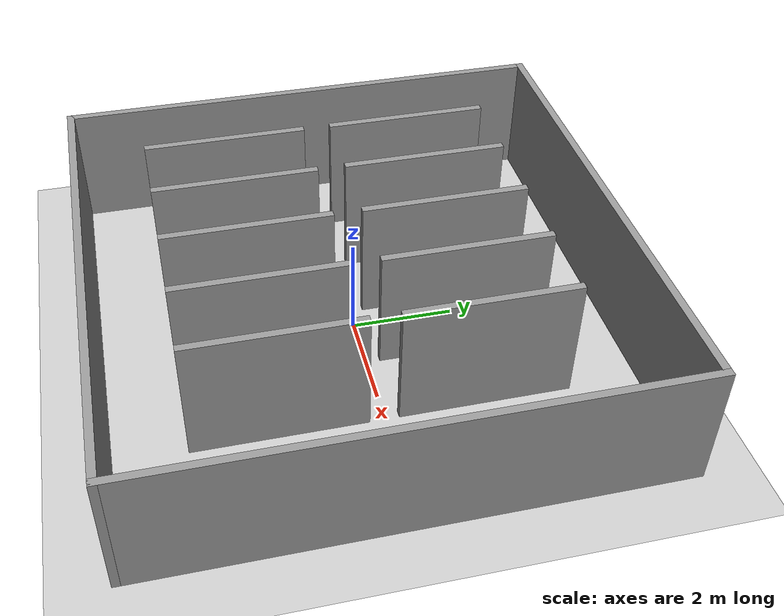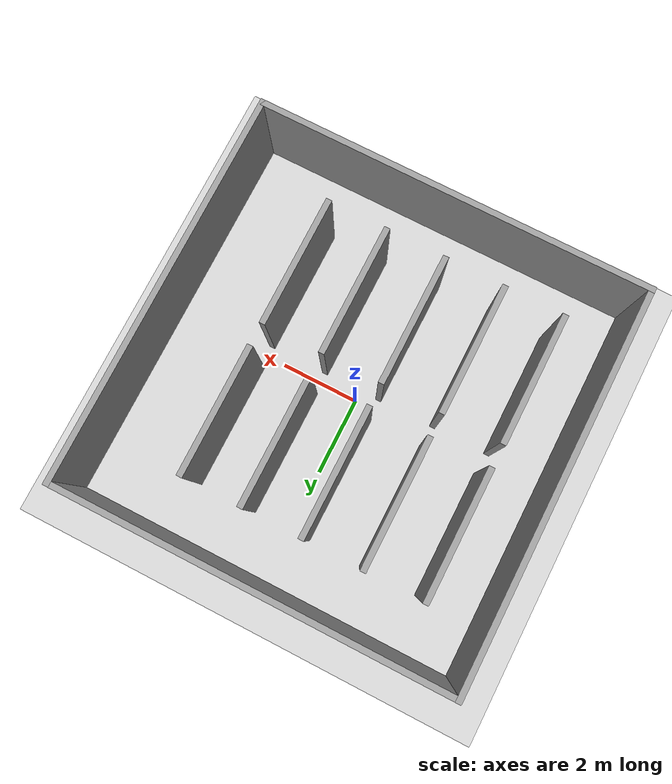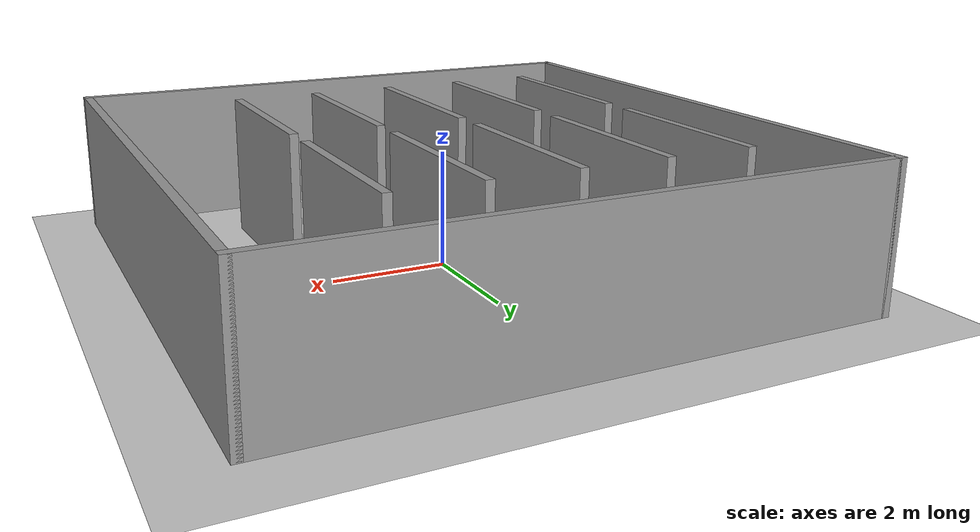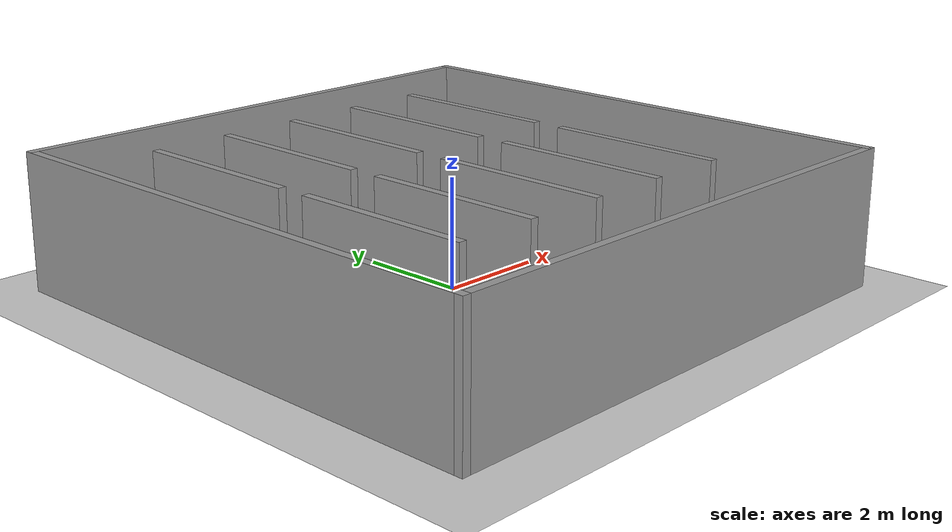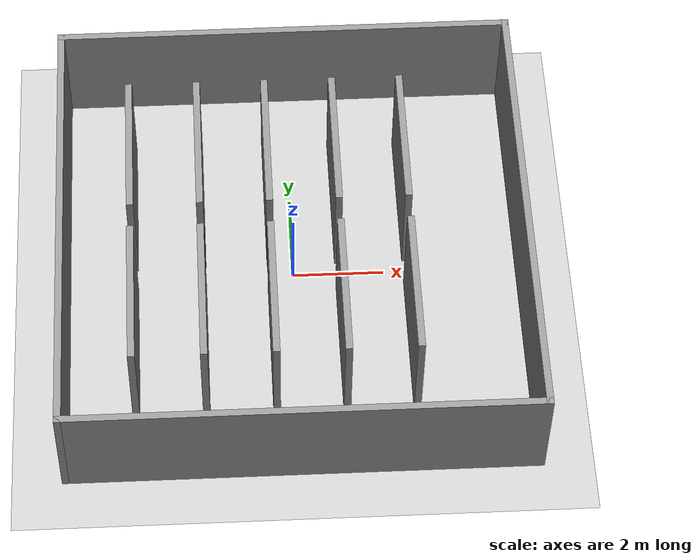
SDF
<sdf version="1.6">
 <world name="default">
  <light name="sun" type="directional">
   <pose>0 0 10 0 -0 0</pose>
   <diffuse>0.8 0.8 0.8 1</diffuse>
   <specular>0.2 0.2 0.2 1</specular>
   <attenuation>
    <range>1000</range>
    <constant>0.9</constant>
    <linear>0.01</linear>
    <quadratic>0.001</quadratic>
   </attenuation>
   <direction>-0.5 0.1 -0.9</direction>
  </light>
  <model name="ground_plane">
   <static>1</static>
   <link name="link">
    <collision name="collision">
     <geometry><plane><normal>0 0 1</normal><size>100 100</size></plane></geometry>
     <surface><friction><ode><mu>100</mu><mu2>50</mu2></ode></friction></surface>
    </collision>
    <visual name="visual">
     <cast_shadows>0</cast_shadows>
     <geometry><plane><normal>0 0 1</normal><size>100 100</size></plane></geometry>
     <material>
      <script><uri>file://media/materials/scripts/gazebo.material</uri><name>Gazebo/Grey</name></script>
     </material>
    </visual>
   </link>
  </model>
  <gravity>0 0 -9.8</gravity>
  <magnetic_field>6e-06 2.3e-05 -4.2e-05</magnetic_field>
  <atmosphere type="adiabatic"/>
  <physics name="default_physics" default="0" type="ode">
   <max_step_size>0.001</max_step_size>
   <real_time_factor>1</real_time_factor>
   <real_time_update_rate>1000</real_time_update_rate>
  </physics>
  <scene><ambient>0.4 0.4 0.4 1</ambient><background>0.7 0.7 0.7 1</background><shadows>1</shadows></scene>
  <spherical_coordinates>
   <surface_model>EARTH_WGS84</surface_model>
   <latitude_deg>0</latitude_deg>
   <longitude_deg>0</longitude_deg>
   <elevation>0</elevation>
   <heading_deg>0</heading_deg>
  </spherical_coordinates>
  <model name="warehouse">
   <link name="Wall_12">
    <pose>-3.5 1.925 0 0 0 -1.5708</pose>
    <visual name="Wall_12_Visual">
     <pose>0 0 1.25 0 -0 0</pose>
     <geometry><box><size>3.3 0.15 2.5</size></box></geometry>
     <material>
      <script><uri>file://media/materials/scripts/gazebo.material</uri><name>Gazebo/Grey</name></script>
      <ambient>1 1 1 1</ambient>
      <shader type="pixel"/>
      <diffuse>0.7 0.7 0.7 1</diffuse>
      <specular>0.01 0.01 0.01 1</specular>
      <emissive>0 0 0 1</emissive>
     </material>
     <meta><layer>0</layer></meta>
    </visual>
    <collision name="Wall_12_Collision">
     <pose>0 0 1.25 0 -0 0</pose>
     <geometry><box><size>3.3 0.15 2.5</size></box></geometry>
     <surface>
      <friction>
       <ode><mu>1</mu><mu2>1</mu2><fdir1>0 0 0</fdir1><slip1>0</slip1><slip2>0</slip2></ode>
       <torsional>
        <coefficient>1</coefficient>
        <patch_radius>0</patch_radius>
        <surface_radius>0</surface_radius>
        <use_patch_radius>1</use_patch_radius>
        <ode><slip>0</slip></ode>
       </torsional>
      </friction>
      <bounce><restitution_coefficient>0</restitution_coefficient><threshold>1e+06</threshold></bounce>
      <contact>
       <collide_without_contact>0</collide_without_contact>
       <collide_without_contact_bitmask>1</collide_without_contact_bitmask>
       <collide_bitmask>1</collide_bitmask>
       <ode>
        <soft_cfm>0</soft_cfm>
        <soft_erp>0.2</soft_erp>
        <kp>1e+13</kp>
        <kd>1</kd>
        <max_vel>0.01</max_vel>
        <min_depth>0</min_depth>
       </ode>
       <bullet>
        <split_impulse>1</split_impulse>
        <split_impulse_penetration_threshold>-0.01</split_impulse_penetration_threshold>
        <soft_cfm>0</soft_cfm>
        <soft_erp>0.2</soft_erp>
        <kp>1e+13</kp>
        <kd>1</kd>
       </bullet>
      </contact>
     </surface>
    </collision>
   </link>
   <link name="Wall_14">
    <pose>-3.5 -1.925 0 0 -0 1.5708</pose>
    <visual name="Wall_14_Visual">
     <pose>0 0 1.25 0 -0 0</pose>
     <geometry><box><size>3.3 0.15 2.5</size></box></geometry>
     <material>
      <script><uri>file://media/materials/scripts/gazebo.material</uri><name>Gazebo/Grey</name></script>
      <ambient>1 1 1 1</ambient>
      <shader type="pixel"/>
      <diffuse>0.7 0.7 0.7 1</diffuse>
      <specular>0.01 0.01 0.01 1</specular>
      <emissive>0 0 0 1</emissive>
     </material>
     <meta><layer>0</layer></meta>
    </visual>
    <collision name="Wall_14_Collision">
     <pose>0 0 1.25 0 -0 0</pose>
     <geometry><box><size>3.3 0.15 2.5</size></box></geometry>
     <surface>
      <friction>
       <ode><mu>1</mu><mu2>1</mu2><fdir1>0 0 0</fdir1><slip1>0</slip1><slip2>0</slip2></ode>
       <torsional>
        <coefficient>1</coefficient>
        <patch_radius>0</patch_radius>
        <surface_radius>0</surface_radius>
        <use_patch_radius>1</use_patch_radius>
        <ode><slip>0</slip></ode>
       </torsional>
      </friction>
      <bounce><restitution_coefficient>0</restitution_coefficient><threshold>1e+06</threshold></bounce>
      <contact>
       <collide_without_contact>0</collide_without_contact>
       <collide_without_contact_bitmask>1</collide_without_contact_bitmask>
       <collide_bitmask>1</collide_bitmask>
       <ode>
        <soft_cfm>0</soft_cfm>
        <soft_erp>0.2</soft_erp>
        <kp>1e+13</kp>
        <kd>1</kd>
        <max_vel>0.01</max_vel>
        <min_depth>0</min_depth>
       </ode>
       <bullet>
        <split_impulse>1</split_impulse>
        <split_impulse_penetration_threshold>-0.01</split_impulse_penetration_threshold>
        <soft_cfm>0</soft_cfm>
        <soft_erp>0.2</soft_erp>
        <kp>1e+13</kp>
        <kd>1</kd>
       </bullet>
      </contact>
     </surface>
    </collision>
   </link>
   <link name="Wall_16">
    <pose>-2 1.925 0 0 0 -1.5708</pose>
    <visual name="Wall_16_Visual">
     <pose>0 0 1.25 0 -0 0</pose>
     <geometry><box><size>3.3 0.15 2.5</size></box></geometry>
     <material>
      <script><uri>file://media/materials/scripts/gazebo.material</uri><name>Gazebo/Grey</name></script>
      <ambient>1 1 1 1</ambient>
      <shader type="pixel"/>
      <diffuse>0.7 0.7 0.7 1</diffuse>
      <specular>0.01 0.01 0.01 1</specular>
      <emissive>0 0 0 1</emissive>
     </material>
     <meta><layer>0</layer></meta>
    </visual>
    <collision name="Wall_16_Collision">
     <pose>0 0 1.25 0 -0 0</pose>
     <geometry><box><size>3.3 0.15 2.5</size></box></geometry>
     <surface>
      <friction>
       <ode><mu>1</mu><mu2>1</mu2><fdir1>0 0 0</fdir1><slip1>0</slip1><slip2>0</slip2></ode>
       <torsional>
        <coefficient>1</coefficient>
        <patch_radius>0</patch_radius>
        <surface_radius>0</surface_radius>
        <use_patch_radius>1</use_patch_radius>
        <ode><slip>0</slip></ode>
       </torsional>
      </friction>
      <bounce><restitution_coefficient>0</restitution_coefficient><threshold>1e+06</threshold></bounce>
      <contact>
       <collide_without_contact>0</collide_without_contact>
       <collide_without_contact_bitmask>1</collide_without_contact_bitmask>
       <collide_bitmask>1</collide_bitmask>
       <ode>
        <soft_cfm>0</soft_cfm>
        <soft_erp>0.2</soft_erp>
        <kp>1e+13</kp>
        <kd>1</kd>
        <max_vel>0.01</max_vel>
        <min_depth>0</min_depth>
       </ode>
       <bullet>
        <split_impulse>1</split_impulse>
        <split_impulse_penetration_threshold>-0.01</split_impulse_penetration_threshold>
        <soft_cfm>0</soft_cfm>
        <soft_erp>0.2</soft_erp>
        <kp>1e+13</kp>
        <kd>1</kd>
       </bullet>
      </contact>
     </surface>
    </collision>
   </link>
   <link name="Wall_18">
    <pose>-2 -1.925 0 0 0 -1.5708</pose>
    <visual name="Wall_18_Visual">
     <pose>0 0 1.25 0 -0 0</pose>
     <geometry><box><size>3.3 0.15 2.5</size></box></geometry>
     <material>
      <script><uri>file://media/materials/scripts/gazebo.material</uri><name>Gazebo/Grey</name></script>
      <ambient>1 1 1 1</ambient>
      <shader type="pixel"/>
      <diffuse>0.7 0.7 0.7 1</diffuse>
      <specular>0.01 0.01 0.01 1</specular>
      <emissive>0 0 0 1</emissive>
     </material>
     <meta><layer>0</layer></meta>
    </visual>
    <collision name="Wall_18_Collision">
     <pose>0 0 1.25 0 -0 0</pose>
     <geometry><box><size>3.3 0.15 2.5</size></box></geometry>
     <surface>
      <friction>
       <ode><mu>1</mu><mu2>1</mu2><fdir1>0 0 0</fdir1><slip1>0</slip1><slip2>0</slip2></ode>
       <torsional>
        <coefficient>1</coefficient>
        <patch_radius>0</patch_radius>
        <surface_radius>0</surface_radius>
        <use_patch_radius>1</use_patch_radius>
        <ode><slip>0</slip></ode>
       </torsional>
      </friction>
      <bounce><restitution_coefficient>0</restitution_coefficient><threshold>1e+06</threshold></bounce>
      <contact>
       <collide_without_contact>0</collide_without_contact>
       <collide_without_contact_bitmask>1</collide_without_contact_bitmask>
       <collide_bitmask>1</collide_bitmask>
       <ode>
        <soft_cfm>0</soft_cfm>
        <soft_erp>0.2</soft_erp>
        <kp>1e+13</kp>
        <kd>1</kd>
        <max_vel>0.01</max_vel>
        <min_depth>0</min_depth>
       </ode>
       <bullet>
        <split_impulse>1</split_impulse>
        <split_impulse_penetration_threshold>-0.01</split_impulse_penetration_threshold>
        <soft_cfm>0</soft_cfm>
        <soft_erp>0.2</soft_erp>
        <kp>1e+13</kp>
        <kd>1</kd>
       </bullet>
      </contact>
     </surface>
    </collision>
   </link>
   <link name="Wall_20">
    <pose>-0.5 1.925 0 0 0 -1.5708</pose>
    <visual name="Wall_20_Visual">
     <pose>0 0 1.25 0 -0 0</pose>
     <geometry><box><size>3.3 0.15 2.5</size></box></geometry>
     <material>
      <script><uri>file://media/materials/scripts/gazebo.material</uri><name>Gazebo/Grey</name></script>
      <ambient>1 1 1 1</ambient>
      <shader type="pixel"/>
      <diffuse>0.7 0.7 0.7 1</diffuse>
      <specular>0.01 0.01 0.01 1</specular>
      <emissive>0 0 0 1</emissive>
     </material>
     <meta><layer>0</layer></meta>
    </visual>
    <collision name="Wall_20_Collision">
     <pose>0 0 1.25 0 -0 0</pose>
     <geometry><box><size>3.3 0.15 2.5</size></box></geometry>
     <surface>
      <friction>
       <ode><mu>1</mu><mu2>1</mu2><fdir1>0 0 0</fdir1><slip1>0</slip1><slip2>0</slip2></ode>
       <torsional>
        <coefficient>1</coefficient>
        <patch_radius>0</patch_radius>
        <surface_radius>0</surface_radius>
        <use_patch_radius>1</use_patch_radius>
        <ode><slip>0</slip></ode>
       </torsional>
      </friction>
      <bounce><restitution_coefficient>0</restitution_coefficient><threshold>1e+06</threshold></bounce>
      <contact>
       <collide_without_contact>0</collide_without_contact>
       <collide_without_contact_bitmask>1</collide_without_contact_bitmask>
       <collide_bitmask>1</collide_bitmask>
       <ode>
        <soft_cfm>0</soft_cfm>
        <soft_erp>0.2</soft_erp>
        <kp>1e+13</kp>
        <kd>1</kd>
        <max_vel>0.01</max_vel>
        <min_depth>0</min_depth>
       </ode>
       <bullet>
        <split_impulse>1</split_impulse>
        <split_impulse_penetration_threshold>-0.01</split_impulse_penetration_threshold>
        <soft_cfm>0</soft_cfm>
        <soft_erp>0.2</soft_erp>
        <kp>1e+13</kp>
        <kd>1</kd>
       </bullet>
      </contact>
     </surface>
    </collision>
   </link>
   <link name="Wall_22">
    <pose>1 1.925 0 0 0 -1.5708</pose>
    <visual name="Wall_22_Visual">
     <pose>0 0 1.25 0 -0 0</pose>
     <geometry><box><size>3.3 0.15 2.5</size></box></geometry>
     <material>
      <script><uri>file://media/materials/scripts/gazebo.material</uri><name>Gazebo/Grey</name></script>
      <ambient>1 1 1 1</ambient>
      <shader type="pixel"/>
      <diffuse>0.7 0.7 0.7 1</diffuse>
      <specular>0.01 0.01 0.01 1</specular>
      <emissive>0 0 0 1</emissive>
     </material>
     <meta><layer>0</layer></meta>
    </visual>
    <collision name="Wall_22_Collision">
     <pose>0 0 1.25 0 -0 0</pose>
     <geometry><box><size>3.3 0.15 2.5</size></box></geometry>
     <surface>
      <friction>
       <ode><mu>1</mu><mu2>1</mu2><fdir1>0 0 0</fdir1><slip1>0</slip1><slip2>0</slip2></ode>
       <torsional>
        <coefficient>1</coefficient>
        <patch_radius>0</patch_radius>
        <surface_radius>0</surface_radius>
        <use_patch_radius>1</use_patch_radius>
        <ode><slip>0</slip></ode>
       </torsional>
      </friction>
      <bounce><restitution_coefficient>0</restitution_coefficient><threshold>1e+06</threshold></bounce>
      <contact>
       <collide_without_contact>0</collide_without_contact>
       <collide_without_contact_bitmask>1</collide_without_contact_bitmask>
       <collide_bitmask>1</collide_bitmask>
       <ode>
        <soft_cfm>0</soft_cfm>
        <soft_erp>0.2</soft_erp>
        <kp>1e+13</kp>
        <kd>1</kd>
        <max_vel>0.01</max_vel>
        <min_depth>0</min_depth>
       </ode>
       <bullet>
        <split_impulse>1</split_impulse>
        <split_impulse_penetration_threshold>-0.01</split_impulse_penetration_threshold>
        <soft_cfm>0</soft_cfm>
        <soft_erp>0.2</soft_erp>
        <kp>1e+13</kp>
        <kd>1</kd>
       </bullet>
      </contact>
     </surface>
    </collision>
   </link>
   <link name="Wall_24">
    <pose>2.5 1.925 0 0 0 -1.5708</pose>
    <visual name="Wall_24_Visual">
     <pose>0 0 1.25 0 -0 0</pose>
     <geometry><box><size>3.3 0.15 2.5</size></box></geometry>
     <material>
      <script><uri>file://media/materials/scripts/gazebo.material</uri><name>Gazebo/Grey</name></script>
      <ambient>1 1 1 1</ambient>
      <shader type="pixel"/>
      <diffuse>0.7 0.7 0.7 1</diffuse>
      <specular>0.01 0.01 0.01 1</specular>
      <emissive>0 0 0 1</emissive>
     </material>
     <meta><layer>0</layer></meta>
    </visual>
    <collision name="Wall_24_Collision">
     <pose>0 0 1.25 0 -0 0</pose>
     <geometry><box><size>3.3 0.15 2.5</size></box></geometry>
     <surface>
      <friction>
       <ode><mu>1</mu><mu2>1</mu2><fdir1>0 0 0</fdir1><slip1>0</slip1><slip2>0</slip2></ode>
       <torsional>
        <coefficient>1</coefficient>
        <patch_radius>0</patch_radius>
        <surface_radius>0</surface_radius>
        <use_patch_radius>1</use_patch_radius>
        <ode><slip>0</slip></ode>
       </torsional>
      </friction>
      <bounce><restitution_coefficient>0</restitution_coefficient><threshold>1e+06</threshold></bounce>
      <contact>
       <collide_without_contact>0</collide_without_contact>
       <collide_without_contact_bitmask>1</collide_without_contact_bitmask>
       <collide_bitmask>1</collide_bitmask>
       <ode>
        <soft_cfm>0</soft_cfm>
        <soft_erp>0.2</soft_erp>
        <kp>1e+13</kp>
        <kd>1</kd>
        <max_vel>0.01</max_vel>
        <min_depth>0</min_depth>
       </ode>
       <bullet>
        <split_impulse>1</split_impulse>
        <split_impulse_penetration_threshold>-0.01</split_impulse_penetration_threshold>
        <soft_cfm>0</soft_cfm>
        <soft_erp>0.2</soft_erp>
        <kp>1e+13</kp>
        <kd>1</kd>
       </bullet>
      </contact>
     </surface>
    </collision>
   </link>
   <link name="Wall_30">
    <pose>-0.5 -1.925 0 0 0 -1.5708</pose>
    <visual name="Wall_30_Visual">
     <pose>0 0 1.25 0 -0 0</pose>
     <geometry><box><size>3.3 0.15 2.5</size></box></geometry>
     <material>
      <script><uri>file://media/materials/scripts/gazebo.material</uri><name>Gazebo/Grey</name></script>
      <ambient>1 1 1 1</ambient>
      <shader type="pixel"/>
      <diffuse>0.7 0.7 0.7 1</diffuse>
      <specular>0.01 0.01 0.01 1</specular>
      <emissive>0 0 0 1</emissive>
     </material>
     <meta><layer>0</layer></meta>
    </visual>
    <collision name="Wall_30_Collision">
     <pose>0 0 1.25 0 -0 0</pose>
     <geometry><box><size>3.3 0.15 2.5</size></box></geometry>
     <surface>
      <friction>
       <ode><mu>1</mu><mu2>1</mu2><fdir1>0 0 0</fdir1><slip1>0</slip1><slip2>0</slip2></ode>
       <torsional>
        <coefficient>1</coefficient>
        <patch_radius>0</patch_radius>
        <surface_radius>0</surface_radius>
        <use_patch_radius>1</use_patch_radius>
        <ode><slip>0</slip></ode>
       </torsional>
      </friction>
      <bounce><restitution_coefficient>0</restitution_coefficient><threshold>1e+06</threshold></bounce>
      <contact>
       <collide_without_contact>0</collide_without_contact>
       <collide_without_contact_bitmask>1</collide_without_contact_bitmask>
       <collide_bitmask>1</collide_bitmask>
       <ode>
        <soft_cfm>0</soft_cfm>
        <soft_erp>0.2</soft_erp>
        <kp>1e+13</kp>
        <kd>1</kd>
        <max_vel>0.01</max_vel>
        <min_depth>0</min_depth>
       </ode>
       <bullet>
        <split_impulse>1</split_impulse>
        <split_impulse_penetration_threshold>-0.01</split_impulse_penetration_threshold>
        <soft_cfm>0</soft_cfm>
        <soft_erp>0.2</soft_erp>
        <kp>1e+13</kp>
        <kd>1</kd>
       </bullet>
      </contact>
     </surface>
    </collision>
   </link>
   <link name="Wall_32">
    <pose>1 -1.925 0 0 0 -1.5708</pose>
    <visual name="Wall_32_Visual">
     <pose>0 0 1.25 0 -0 0</pose>
     <geometry><box><size>3.3 0.15 2.5</size></box></geometry>
     <material>
      <script><uri>file://media/materials/scripts/gazebo.material</uri><name>Gazebo/Grey</name></script>
      <ambient>1 1 1 1</ambient>
      <shader type="pixel"/>
      <diffuse>0.7 0.7 0.7 1</diffuse>
      <specular>0.01 0.01 0.01 1</specular>
      <emissive>0 0 0 1</emissive>
     </material>
     <meta><layer>0</layer></meta>
    </visual>
    <collision name="Wall_32_Collision">
     <pose>0 0 1.25 0 -0 0</pose>
     <geometry><box><size>3.3 0.15 2.5</size></box></geometry>
     <surface>
      <friction>
       <ode><mu>1</mu><mu2>1</mu2><fdir1>0 0 0</fdir1><slip1>0</slip1><slip2>0</slip2></ode>
       <torsional>
        <coefficient>1</coefficient>
        <patch_radius>0</patch_radius>
        <surface_radius>0</surface_radius>
        <use_patch_radius>1</use_patch_radius>
        <ode><slip>0</slip></ode>
       </torsional>
      </friction>
      <bounce><restitution_coefficient>0</restitution_coefficient><threshold>1e+06</threshold></bounce>
      <contact>
       <collide_without_contact>0</collide_without_contact>
       <collide_without_contact_bitmask>1</collide_without_contact_bitmask>
       <collide_bitmask>1</collide_bitmask>
       <ode>
        <soft_cfm>0</soft_cfm>
        <soft_erp>0.2</soft_erp>
        <kp>1e+13</kp>
        <kd>1</kd>
        <max_vel>0.01</max_vel>
        <min_depth>0</min_depth>
       </ode>
       <bullet>
        <split_impulse>1</split_impulse>
        <split_impulse_penetration_threshold>-0.01</split_impulse_penetration_threshold>
        <soft_cfm>0</soft_cfm>
        <soft_erp>0.2</soft_erp>
        <kp>1e+13</kp>
        <kd>1</kd>
       </bullet>
      </contact>
     </surface>
    </collision>
   </link>
   <link name="Wall_34">
    <pose>2.5 -1.925 0 0 0 -1.5708</pose>
    <visual name="Wall_34_Visual">
     <pose>0 0 1.25 0 -0 0</pose>
     <geometry><box><size>3.3 0.15 2.5</size></box></geometry>
     <material>
      <script><uri>file://media/materials/scripts/gazebo.material</uri><name>Gazebo/Grey</name></script>
      <ambient>1 1 1 1</ambient>
      <shader type="pixel"/>
      <diffuse>0.7 0.7 0.7 1</diffuse>
      <specular>0.01 0.01 0.01 1</specular>
      <emissive>0 0 0 1</emissive>
     </material>
     <meta><layer>0</layer></meta>
    </visual>
    <collision name="Wall_34_Collision">
     <pose>0 0 1.25 0 -0 0</pose>
     <geometry><box><size>3.3 0.15 2.5</size></box></geometry>
     <surface>
      <friction>
       <ode><mu>1</mu><mu2>1</mu2><fdir1>0 0 0</fdir1><slip1>0</slip1><slip2>0</slip2></ode>
       <torsional>
        <coefficient>1</coefficient>
        <patch_radius>0</patch_radius>
        <surface_radius>0</surface_radius>
        <use_patch_radius>1</use_patch_radius>
        <ode><slip>0</slip></ode>
       </torsional>
      </friction>
      <bounce><restitution_coefficient>0</restitution_coefficient><threshold>1e+06</threshold></bounce>
      <contact>
       <collide_without_contact>0</collide_without_contact>
       <collide_without_contact_bitmask>1</collide_without_contact_bitmask>
       <collide_bitmask>1</collide_bitmask>
       <ode>
        <soft_cfm>0</soft_cfm>
        <soft_erp>0.2</soft_erp>
        <kp>1e+13</kp>
        <kd>1</kd>
        <max_vel>0.01</max_vel>
        <min_depth>0</min_depth>
       </ode>
       <bullet>
        <split_impulse>1</split_impulse>
        <split_impulse_penetration_threshold>-0.01</split_impulse_penetration_threshold>
        <soft_cfm>0</soft_cfm>
        <soft_erp>0.2</soft_erp>
        <kp>1e+13</kp>
        <kd>1</kd>
       </bullet>
      </contact>
     </surface>
    </collision>
   </link>
   <link name="Wall_6">
    <pose>-5 0 0 0 -0 1.5708</pose>
    <visual name="Wall_6_Visual">
     <pose>0 0 1.25 0 -0 0</pose>
     <geometry><box><size>10.15 0.15 2.5</size></box></geometry>
     <material>
      <script><uri>file://media/materials/scripts/gazebo.material</uri><name>Gazebo/Grey</name></script>
      <ambient>1 1 1 1</ambient>
      <shader type="pixel"/>
      <diffuse>0.7 0.7 0.7 1</diffuse>
      <specular>0.01 0.01 0.01 1</specular>
      <emissive>0 0 0 1</emissive>
     </material>
     <meta><layer>0</layer></meta>
    </visual>
    <collision name="Wall_6_Collision">
     <pose>0 0 1.25 0 -0 0</pose>
     <geometry><box><size>10.15 0.15 2.5</size></box></geometry>
     <surface>
      <friction>
       <ode><mu>1</mu><mu2>1</mu2><fdir1>0 0 0</fdir1><slip1>0</slip1><slip2>0</slip2></ode>
       <torsional>
        <coefficient>1</coefficient>
        <patch_radius>0</patch_radius>
        <surface_radius>0</surface_radius>
        <use_patch_radius>1</use_patch_radius>
        <ode><slip>0</slip></ode>
       </torsional>
      </friction>
      <bounce><restitution_coefficient>0</restitution_coefficient><threshold>1e+06</threshold></bounce>
      <contact>
       <collide_without_contact>0</collide_without_contact>
       <collide_without_contact_bitmask>1</collide_without_contact_bitmask>
       <collide_bitmask>1</collide_bitmask>
       <ode>
        <soft_cfm>0</soft_cfm>
        <soft_erp>0.2</soft_erp>
        <kp>1e+13</kp>
        <kd>1</kd>
        <max_vel>0.01</max_vel>
        <min_depth>0</min_depth>
       </ode>
       <bullet>
        <split_impulse>1</split_impulse>
        <split_impulse_penetration_threshold>-0.01</split_impulse_penetration_threshold>
        <soft_cfm>0</soft_cfm>
        <soft_erp>0.2</soft_erp>
        <kp>1e+13</kp>
        <kd>1</kd>
       </bullet>
      </contact>
     </surface>
    </collision>
   </link>
   <link name="Wall_7">
    <pose>0 5 0 0 -0 0</pose>
    <visual name="Wall_7_Visual">
     <pose>0 0 1.25 0 -0 0</pose>
     <geometry><box><size>10.15 0.15 2.5</size></box></geometry>
     <material>
      <script><uri>file://media/materials/scripts/gazebo.material</uri><name>Gazebo/Grey</name></script>
      <ambient>1 1 1 1</ambient>
      <shader type="pixel"/>
      <diffuse>0.7 0.7 0.7 1</diffuse>
      <specular>0.01 0.01 0.01 1</specular>
      <emissive>0 0 0 1</emissive>
     </material>
     <meta><layer>0</layer></meta>
    </visual>
    <collision name="Wall_7_Collision">
     <pose>0 0 1.25 0 -0 0</pose>
     <geometry><box><size>10.15 0.15 2.5</size></box></geometry>
     <surface>
      <friction>
       <ode><mu>1</mu><mu2>1</mu2><fdir1>0 0 0</fdir1><slip1>0</slip1><slip2>0</slip2></ode>
       <torsional>
        <coefficient>1</coefficient>
        <patch_radius>0</patch_radius>
        <surface_radius>0</surface_radius>
        <use_patch_radius>1</use_patch_radius>
        <ode><slip>0</slip></ode>
       </torsional>
      </friction>
      <bounce><restitution_coefficient>0</restitution_coefficient><threshold>1e+06</threshold></bounce>
      <contact>
       <collide_without_contact>0</collide_without_contact>
       <collide_without_contact_bitmask>1</collide_without_contact_bitmask>
       <collide_bitmask>1</collide_bitmask>
       <ode>
        <soft_cfm>0</soft_cfm>
        <soft_erp>0.2</soft_erp>
        <kp>1e+13</kp>
        <kd>1</kd>
        <max_vel>0.01</max_vel>
        <min_depth>0</min_depth>
       </ode>
       <bullet>
        <split_impulse>1</split_impulse>
        <split_impulse_penetration_threshold>-0.01</split_impulse_penetration_threshold>
        <soft_cfm>0</soft_cfm>
        <soft_erp>0.2</soft_erp>
        <kp>1e+13</kp>
        <kd>1</kd>
       </bullet>
      </contact>
     </surface>
    </collision>
   </link>
   <link name="Wall_8">
    <pose>5 0 0 0 0 -1.5708</pose>
    <visual name="Wall_8_Visual">
     <pose>0 0 1.25 0 -0 0</pose>
     <geometry><box><size>10.15 0.15 2.5</size></box></geometry>
     <material>
      <script><uri>file://media/materials/scripts/gazebo.material</uri><name>Gazebo/Grey</name></script>
      <ambient>1 1 1 1</ambient>
      <shader type="pixel"/>
      <diffuse>0.7 0.7 0.7 1</diffuse>
      <specular>0.01 0.01 0.01 1</specular>
      <emissive>0 0 0 1</emissive>
     </material>
     <meta><layer>0</layer></meta>
    </visual>
    <collision name="Wall_8_Collision">
     <pose>0 0 1.25 0 -0 0</pose>
     <geometry><box><size>10.15 0.15 2.5</size></box></geometry>
     <surface>
      <friction>
       <ode><mu>1</mu><mu2>1</mu2><fdir1>0 0 0</fdir1><slip1>0</slip1><slip2>0</slip2></ode>
       <torsional>
        <coefficient>1</coefficient>
        <patch_radius>0</patch_radius>
        <surface_radius>0</surface_radius>
        <use_patch_radius>1</use_patch_radius>
        <ode><slip>0</slip></ode>
       </torsional>
      </friction>
      <bounce><restitution_coefficient>0</restitution_coefficient><threshold>1e+06</threshold></bounce>
      <contact>
       <collide_without_contact>0</collide_without_contact>
       <collide_without_contact_bitmask>1</collide_without_contact_bitmask>
       <collide_bitmask>1</collide_bitmask>
       <ode>
        <soft_cfm>0</soft_cfm>
        <soft_erp>0.2</soft_erp>
        <kp>1e+13</kp>
        <kd>1</kd>
        <max_vel>0.01</max_vel>
        <min_depth>0</min_depth>
       </ode>
       <bullet>
        <split_impulse>1</split_impulse>
        <split_impulse_penetration_threshold>-0.01</split_impulse_penetration_threshold>
        <soft_cfm>0</soft_cfm>
        <soft_erp>0.2</soft_erp>
        <kp>1e+13</kp>
        <kd>1</kd>
       </bullet>
      </contact>
     </surface>
    </collision>
   </link>
   <link name="Wall_9">
    <pose>0 -5 0 0 -0 3.14159</pose>
    <visual name="Wall_9_Visual">
     <pose>0 0 1.25 0 -0 0</pose>
     <geometry><box><size>10.15 0.15 2.5</size></box></geometry>
     <material>
      <script><uri>file://media/materials/scripts/gazebo.material</uri><name>Gazebo/Grey</name></script>
      <ambient>1 1 1 1</ambient>
      <shader type="pixel"/>
      <diffuse>0.7 0.7 0.7 1</diffuse>
      <specular>0.01 0.01 0.01 1</specular>
      <emissive>0 0 0 1</emissive>
     </material>
     <meta><layer>0</layer></meta>
    </visual>
    <collision name="Wall_9_Collision">
     <pose>0 0 1.25 0 -0 0</pose>
     <geometry><box><size>10.15 0.15 2.5</size></box></geometry>
     <surface>
      <friction>
       <ode><mu>1</mu><mu2>1</mu2><fdir1>0 0 0</fdir1><slip1>0</slip1><slip2>0</slip2></ode>
       <torsional>
        <coefficient>1</coefficient>
        <patch_radius>0</patch_radius>
        <surface_radius>0</surface_radius>
        <use_patch_radius>1</use_patch_radius>
        <ode><slip>0</slip></ode>
       </torsional>
      </friction>
      <bounce><restitution_coefficient>0</restitution_coefficient><threshold>1e+06</threshold></bounce>
      <contact>
       <collide_without_contact>0</collide_without_contact>
       <collide_without_contact_bitmask>1</collide_without_contact_bitmask>
       <collide_bitmask>1</collide_bitmask>
       <ode>
        <soft_cfm>0</soft_cfm>
        <soft_erp>0.2</soft_erp>
        <kp>1e+13</kp>
        <kd>1</kd>
        <max_vel>0.01</max_vel>
        <min_depth>0</min_depth>
       </ode>
       <bullet>
        <split_impulse>1</split_impulse>
        <split_impulse_penetration_threshold>-0.01</split_impulse_penetration_threshold>
        <soft_cfm>0</soft_cfm>
        <soft_erp>0.2</soft_erp>
        <kp>1e+13</kp>
        <kd>1</kd>
       </bullet>
      </contact>
     </surface>
    </collision>
   </link>
   <static>1</static>
  </model>
 </world>
</sdf>
